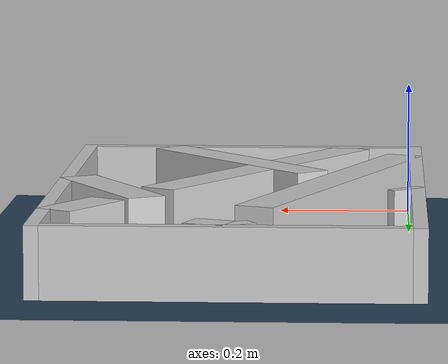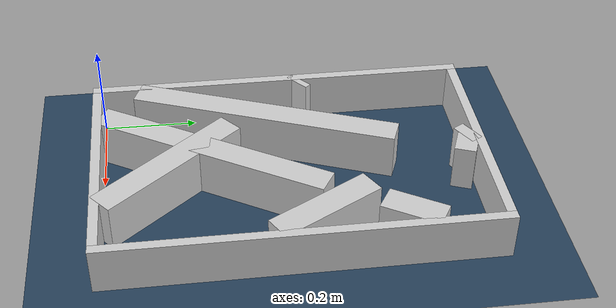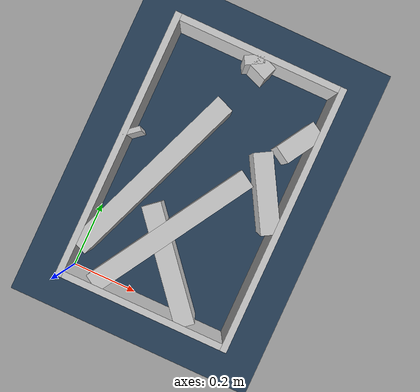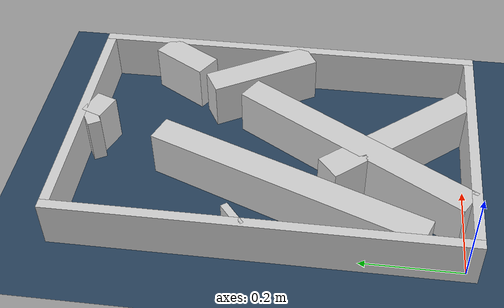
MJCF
<?xml version="1.0" ?>
<mujoco model="generated_real_template">
  <compiler angle="degree"/>
  <option timestep="0.002" integrator="implicitfast" iterations="100" cone="elliptic"/>
  <default>
    <geom density="1"/>
  </default>
  <asset>
    <texture builtin="gradient" height="3072" rgb1="0.3 0.5 0.7" rgb2="0 0 0" type="skybox" width="512"/>
    <texture builtin="checker" height="300" mark="edge" markrgb="0.8 0.8 0.8" name="groundplane" rgb1="0.2 0.3 0.4" rgb2="0.1 0.2 0.3" type="2d" width="300"/>
    <material name="groundplane" reflectance="0.2" texrepeat="5 5" texture="groundplane" texuniform="true"/>
  </asset>
  <worldbody>
    <light dir="0 0 -1" directional="true" pos="0 0 1.5"/>
    <geom name="floor" type="plane" condim="4" friction="0.5 0.005 0.001" material="groundplane" size="0 0 0.05"/>
    <body name="walls">
      <geom name="wall_boundary_left" type="box" condim="4" friction="1.0 0.005 0.0001" rgba="0.8 0.8 0.8 1" pos="-0.010000 0.387500 0.050000" euler="0 0 0.000000" size="0.010000 0.407500 0.050000"/>
      <geom name="wall_boundary_right" type="box" condim="4" friction="1.0 0.005 0.0001" rgba="0.8 0.8 0.8 1" pos="0.500000 0.387500 0.050000" euler="0 0 0.000000" size="0.010000 0.407500 0.050000"/>
      <geom name="wall_boundary_bottom" type="box" condim="4" friction="1.0 0.005 0.0001" rgba="0.8 0.8 0.8 1" pos="0.245000 -0.010000 0.050000" euler="0 0 0.000000" size="0.245000 0.010000 0.050000"/>
      <geom name="wall_boundary_top" type="box" condim="4" friction="1.0 0.005 0.0001" rgba="0.8 0.8 0.8 1" pos="0.245000 0.785000 0.050000" euler="0 0 0.000000" size="0.245000 0.010000 0.050000"/>
      <geom name="wall_inner_1_1" type="box" condim="4" friction="1.0 0.005 0.0001" rgba="0.8 0.8 0.8 1" pos="0.237552 0.763274 0.050000" euler="0 0 -60.016048" size="0.013538 0.028500 0.050000"/>
      <geom name="wall_inner_1_2" type="box" condim="4" friction="1.0 0.005 0.0001" rgba="0.8 0.8 0.8 1" pos="0.426784 0.435301 0.050000" euler="0 0 -60.016048" size="0.117115 0.028500 0.050000"/>
      <geom name="wall_inner_2_1" type="box" condim="4" friction="1.0 0.005 0.0001" rgba="0.8 0.8 0.8 1" pos="0.268952 0.754076 0.050000" euler="0 0 -111.236387" size="0.022448 0.028500 0.050000"/>
      <geom name="wall_inner_2_2" type="box" condim="4" friction="1.0 0.005 0.0001" rgba="0.8 0.8 0.8 1" pos="0.111057 0.347765 0.050000" euler="0 0 -111.236387" size="0.288478 0.028500 0.050000"/>
      <geom name="wall_inner_3_1" type="box" condim="4" friction="1.0 0.005 0.0001" rgba="0.8 0.8 0.8 1" pos="0.223155 0.225810 0.050000" euler="0 0 58.767040" size="0.264085 0.028500 0.050000"/>
      <geom name="wall_inner_3_2" type="box" condim="4" friction="1.0 0.005 0.0001" rgba="0.8 0.8 0.8 1" pos="0.453199 0.605165 0.050000" euler="0 0 58.767040" size="0.062545 0.028500 0.050000"/>
      <geom name="wall_inner_4_1" type="box" condim="4" friction="1.0 0.005 0.0001" rgba="0.8 0.8 0.8 1" pos="0.006533 0.435461 0.050000" euler="0 0 -49.869868" size="0.007357 0.028500 0.050000"/>
      <geom name="wall_inner_4_2" type="box" condim="4" friction="1.0 0.005 0.0001" rgba="0.8 0.8 0.8 1" pos="0.258668 0.136361 0.050000" euler="0 0 -49.869868" size="0.178347 0.028500 0.050000"/>
    </body>
  </worldbody>
</mujoco>
